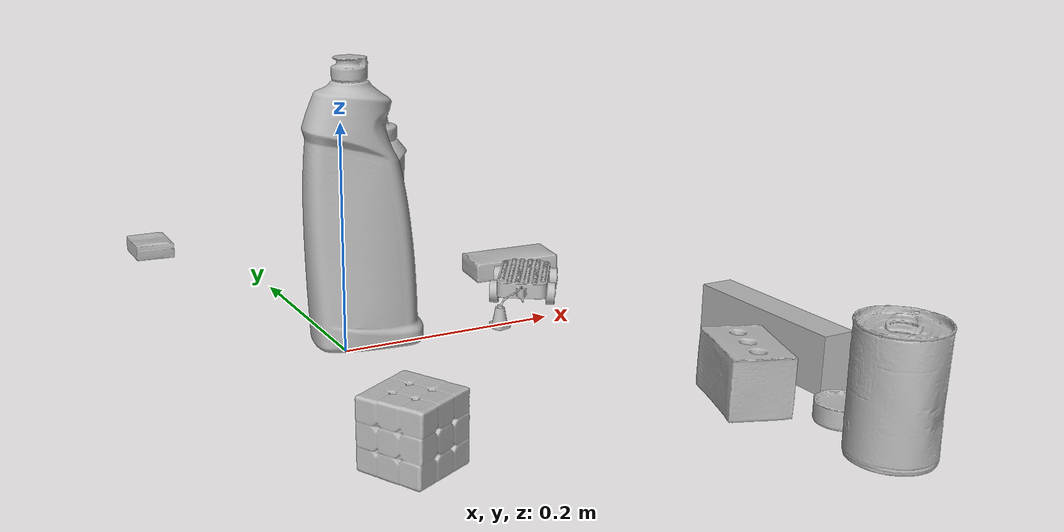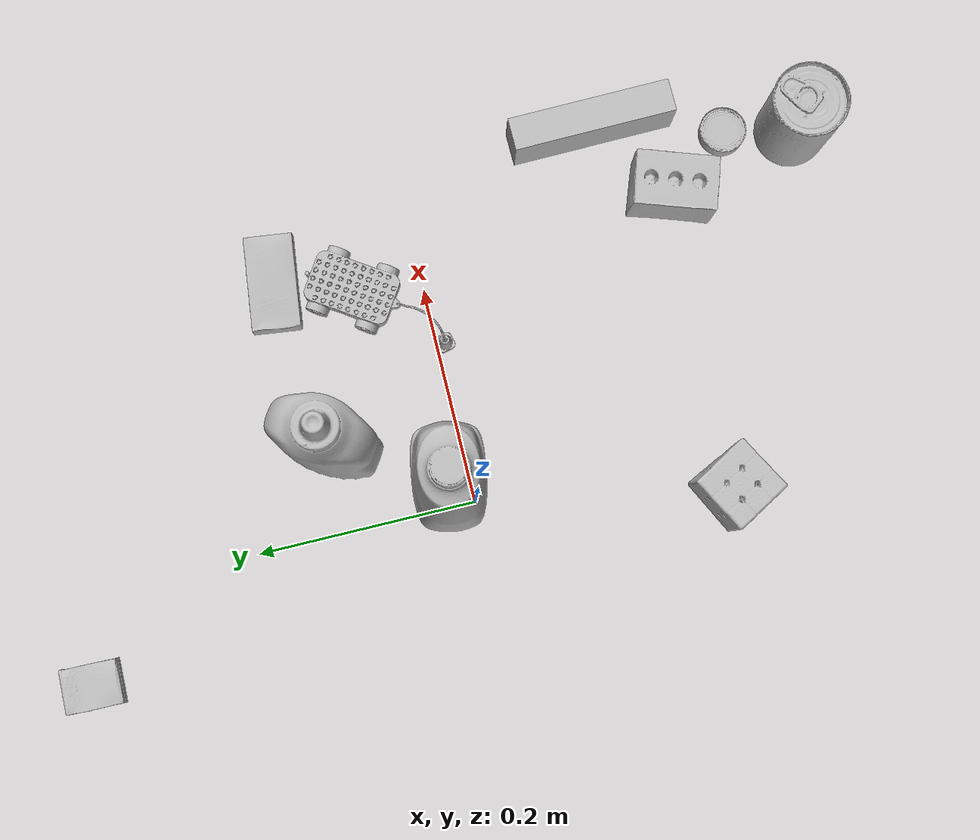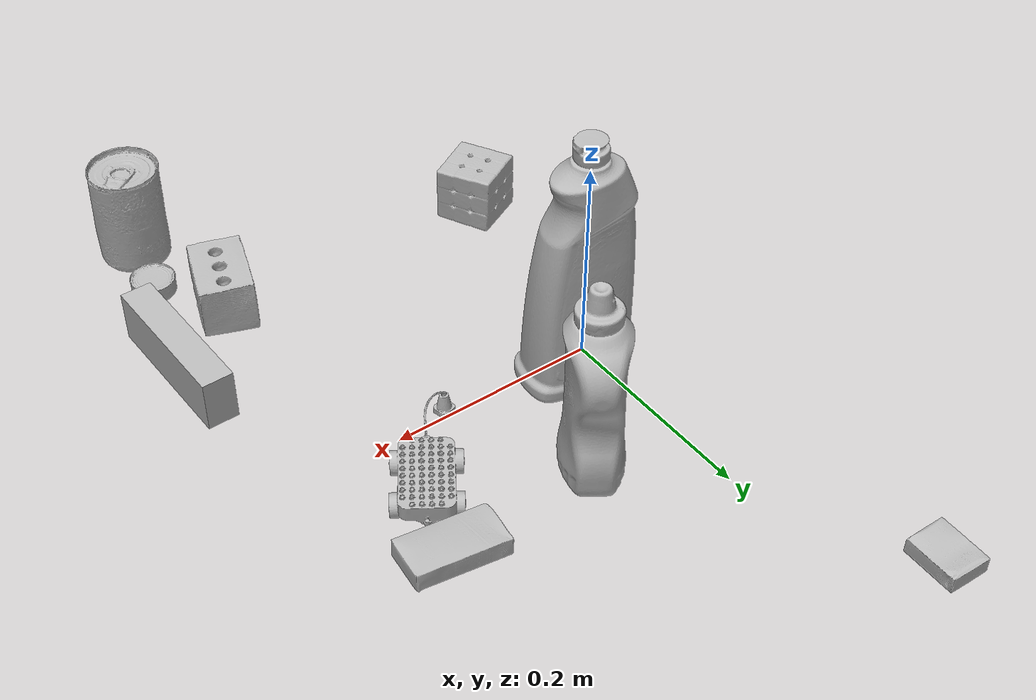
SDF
<sdf version="1.4">
  <world name="default">
    <light name="light1" type="point">
      <pose>0 0 1 0 0 0</pose>
      <diffuse>3 3 3 1</diffuse>
      <specular>3 3 3 1</specular>
    </light>
    <light name="light2" type="point">
      <pose>0 0.5 2 0 0 0</pose>
      <diffuse>1 1 1 1</diffuse>
      <specular>1 1 1 1</specular>
    </light>
    <light name="light3" type="point">
      <pose>0 0.5 2 0 0 0</pose>
      <diffuse>3 3 3 1</diffuse>
      <specular>3 3 3 1</specular>
    </light>
    <scene>
      <ambient>0.7 0.7 0.7</ambient>
    </scene>
    <model name="bottle1">
      <link name="link_bottle1">
        <collision name="default">
          <geometry>
            <mesh>
              <uri>model://bleach_cleanser/collision_meshes/collision.obj</uri>
              <scale>1.0 1.0 1.0</scale>
            </mesh>
          </geometry>
          <surface>
            <friction>
              <ode>
                <mu>0.5</mu>
                <mu2>0.5</mu2>
              </ode>
            </friction>
          <contact>
        <ode>
            <max_vel>0</max_vel>
            <min_depth>0.0001</min_depth>
            <kp>1e8</kp>
        </ode>
    </contact></surface>
        </collision>
        <visual name="default">
          <geometry>
            <mesh>
              <uri>model://bleach_cleanser/visual_meshes/visual.dae</uri>
              <scale>1.0 1.0 1.0</scale>
            </mesh>
          </geometry>
        </visual>
        <inertial>
          <mass>1.2697166204452515</mass>
          <pose>0.00012193183647468686 0.003783883061259985 -0.02442161738872528 -0.07381670616315505 0.00042011510954057825 -0.0068750724928957506</pose>
          <inertia>
            <ixx>0.0061798943</ixx>
            <iyy>0.0057587572</iyy>
            <izz>0.0010566014</izz>
            <ixy>0</ixy>
            <ixz>0</ixz>
            <iyz>0</iyz>
          </inertia>
        </inertial>
      </link>
      <pose>0.025739122182130814 0.01810500957071781 0.1258068084716797 -0.0002479430618360174 -0.0008381912645281163 1.4193372632994137</pose>
    </model>
    <model name="bottle2">
      <link name="link_bottle2">
        <collision name="default">
          <geometry>
            <mesh>
              <uri>model://mustard_bottle/collision_meshes/collision.obj</uri>
              <scale>1.0 1.0 1.0</scale>
            </mesh>
          </geometry>
          <surface>
            <friction>
              <ode>
                <mu>0.5</mu>
                <mu2>0.5</mu2>
              </ode>
            </friction>
          <contact>
        <ode>
            <max_vel>0</max_vel>
            <min_depth>0.0001</min_depth>
            <kp>1e8</kp>
        </ode>
    </contact></surface>
        </collision>
        <visual name="default">
          <geometry>
            <mesh>
              <uri>model://mustard_bottle/visual_meshes/visual.dae</uri>
              <scale>1.0 1.0 1.0</scale>
            </mesh>
          </geometry>
        </visual>
        <inertial>
          <mass>0.7653017640113831</mass>
          <pose>0.000503245391882956 -0.00015647402324248105 -0.01747579500079155 0.0004182327658992807 0.0009465785893850277 0.024853714910462506</pose>
          <inertia>
            <ixx>0.0021251384</ixx>
            <iyy>0.0018646289</iyy>
            <izz>0.0005600813</izz>
            <ixy>0</ixy>
            <ixz>0</ixz>
            <iyz>0</iyz>
          </inertia>
        </inertial>
      </link>
      <pose>0.08061975985765457 0.11567756533622742 0.09641683101654053 0.005728145196422217 -0.006741612955453787 -0.60165924646386</pose>
    </model>
    <model name="toy1">
      <link name="link_toy1">
        <collision name="default">
          <geometry>
            <mesh>
              <uri>model://g_lego_duplo/collision_meshes/collision.obj</uri>
              <scale>0.5 0.5 0.5</scale>
            </mesh>
          </geometry>
          <surface>
            <friction>
              <ode>
                <mu>0.5</mu>
                <mu2>0.5</mu2>
              </ode>
            </friction>
          <contact>
        <ode>
            <max_vel>0</max_vel>
            <min_depth>0.0001</min_depth>
            <kp>1e8</kp>
        </ode>
    </contact></surface>
        </collision>
        <visual name="default">
          <geometry>
            <mesh>
              <uri>model://g_lego_duplo/visual_meshes/visual.dae</uri>
              <scale>0.5 0.5 0.5</scale>
            </mesh>
          </geometry>
        </visual>
        <inertial>
          <mass>0.058442164212465286</mass>
          <pose>-0.025023842230439186 0.0008777315961197019 0.0019403378246352077 0.010962970283690966 0.0381082459421261 -0.09653034831594848</pose>
          <inertia>
            <ixx>2.1170836e-05</ixx>
            <iyy>6.4006235e-05</iyy>
            <izz>8.007422e-05</izz>
            <ixy>0</ixy>
            <ixz>0</ixz>
            <iyz>0</iyz>
          </inertia>
        </inertial>
      </link>
      <pose>0.19545404613018036 0.03954969346523285 0.014837533235549927 -0.00150829613328885 -0.005020010348264483 -2.161773317692422</pose>
    </model>
    <model name="toy2">
      <link name="link_toy2">
        <collision name="default">
          <geometry>
            <mesh>
              <uri>model://foam_brick/collision_meshes/collision.obj</uri>
              <scale>1.0 1.0 1.0</scale>
            </mesh>
          </geometry>
          <surface>
            <friction>
              <ode>
                <mu>0.5</mu>
                <mu2>0.5</mu2>
              </ode>
            </friction>
          <contact>
        <ode>
            <max_vel>0</max_vel>
            <min_depth>0.0001</min_depth>
            <kp>1e8</kp>
        </ode>
    </contact></surface>
        </collision>
        <visual name="default">
          <geometry>
            <mesh>
              <uri>model://foam_brick/visual_meshes/visual.dae</uri>
              <scale>1.0 1.0 1.0</scale>
            </mesh>
          </geometry>
        </visual>
        <inertial>
          <mass>0.20487983524799347</mass>
          <pose>-0.0002522472059354186 0.0003458437859080732 -0.0002532101352699101 -0.2940200921298176 0.01727444945267686 -0.0007449878655710941</pose>
          <inertia>
            <ixx>8.9495355e-05</ixx>
            <iyy>0.0001428839</iyy>
            <izz>0.00014469978</izz>
            <ixy>0</ixy>
            <ixz>0</ixz>
            <iyz>0</iyz>
          </inertia>
        </inertial>
      </link>
      <pose>0.23546212911605835 -0.2421875149011612 0.025922805070877075 0.013416846731058626 0.004152983243203146 1.2403529607237056</pose>
    </model>
    <model name="can1">
      <link name="link_can1">
        <collision name="default">
          <geometry>
            <mesh>
              <uri>model://tuna_fish_can/collision_meshes/collision.obj</uri>
              <scale>0.5 0.5 0.5</scale>
            </mesh>
          </geometry>
          <surface>
            <friction>
              <ode>
                <mu>0.5</mu>
                <mu2>0.5</mu2>
              </ode>
            </friction>
          <contact>
        <ode>
            <max_vel>0</max_vel>
            <min_depth>0.0001</min_depth>
            <kp>1e8</kp>
        </ode>
    </contact></surface>
        </collision>
        <visual name="default">
          <geometry>
            <mesh>
              <uri>model://tuna_fish_can/visual_meshes/visual.dae</uri>
              <scale>0.5 0.5 0.5</scale>
            </mesh>
          </geometry>
        </visual>
        <inertial>
          <mass>0.012491201050579548</mass>
          <pose>-2.036202567978762e-05 -7.256427124957554e-06 -0.0005269025568850338 -0.0017944782936896576 0.0001716245920406042 0.24054207470378652</pose>
          <inertia>
            <ixx>1.6888293e-06</ixx>
            <iyy>1.6817903e-06</iyy>
            <izz>2.889828e-06</izz>
            <ixy>0</ixy>
            <ixz>0</ixz>
            <iyz>0</iyz>
          </inertia>
        </inertial>
      </link>
      <pose>0.27833789587020874 -0.30289751291275024 0.00851999968290329 2.1511202492471556e-09 2.5404563484107465e-08 -2.2124816719263847</pose>
    </model>
    <model name="can2">
      <link name="link_can2">
        <collision name="default">
          <geometry>
            <mesh>
              <uri>model://tomato_soup_can/collision_meshes/collision.obj</uri>
              <scale>1.0 1.0 1.0</scale>
            </mesh>
          </geometry>
          <surface>
            <friction>
              <ode>
                <mu>0.5</mu>
                <mu2>0.5</mu2>
              </ode>
            </friction>
          <contact>
        <ode>
            <max_vel>0</max_vel>
            <min_depth>0.0001</min_depth>
            <kp>1e8</kp>
        </ode>
    </contact></surface>
        </collision>
        <visual name="default">
          <geometry>
            <mesh>
              <uri>model://tomato_soup_can/visual_meshes/visual.dae</uri>
              <scale>1.0 1.0 1.0</scale>
            </mesh>
          </geometry>
        </visual>
        <inertial>
          <mass>0.1827235370874405</mass>
          <pose>0.00012652271834667772 0.00010805515921674669 -0.0017973986687138677 0.007020070640758328 0.00042299385100205743 -0.009903366123441316</pose>
          <inertia>
            <ixx>0.00020034082</ixx>
            <iyy>0.00019918295</iyy>
            <izz>0.00010383482</izz>
            <ixy>0</ixy>
            <ixz>0</ixz>
            <iyz>0</iyz>
          </inertia>
        </inertial>
      </link>
      <pose>0.26553410291671753 -0.3648475706577301 0.051274023950099945 -4.385755767534109e-07 -5.57582263813101e-07 1.9764087414657812</pose>
    </model>
    <model name="box1">
      <link name="link_box1">
        <collision name="default">
          <geometry>
            <mesh>
              <uri>model://jenga/collision_meshes/collision.obj</uri>
              <scale>1.0 1.0 1.0</scale>
            </mesh>
          </geometry>
          <surface>
            <friction>
              <ode>
                <mu>0.5</mu>
                <mu2>0.5</mu2>
              </ode>
            </friction>
          <contact>
        <ode>
            <max_vel>0</max_vel>
            <min_depth>0.0001</min_depth>
            <kp>1e8</kp>
        </ode>
    </contact></surface>
        </collision>
        <visual name="default">
          <geometry>
            <mesh>
              <uri>model://jenga/visual_meshes/visual.dae</uri>
              <scale>1.0 1.0 1.0</scale>
            </mesh>
          </geometry>
        </visual>
        <inertial>
          <mass>0.23032541573047638</mass>
          <pose>-2.502855807051674e-07 -0.00010250010382151231 -4.0923401684267446e-05 0.0 -7.342154049184251e-07 0.0</pose>
          <inertia>
            <ixx>6.3736625e-05</ixx>
            <iyy>0.00043187768</iyy>
            <izz>0.00046106614</izz>
            <ixy>0</ixy>
            <ixz>0</ixz>
            <iyz>0</iyz>
          </inertia>
        </inertial>
      </link>
      <pose>0.3117029368877411 -0.18402843177318573 0.02449694275856018 -1.5774980785644792 2.9223848324221323e-07 -1.5564165424143208</pose>
    </model>
    <model name="box2">
      <link name="link_box2">
        <collision name="default">
          <geometry>
            <mesh>
              <uri>model://cracker_box/collision_meshes/collision.obj</uri>
              <scale>0.25 0.25 0.25</scale>
            </mesh>
          </geometry>
          <surface>
            <friction>
              <ode>
                <mu>0.5</mu>
                <mu2>0.5</mu2>
              </ode>
            </friction>
          <contact>
        <ode>
            <max_vel>0</max_vel>
            <min_depth>0.0001</min_depth>
            <kp>1e8</kp>
        </ode>
    </contact></surface>
        </collision>
        <visual name="default">
          <geometry>
            <mesh>
              <uri>model://cracker_box/visual_meshes/visual.dae</uri>
              <scale>0.25 0.25 0.25</scale>
            </mesh>
          </geometry>
        </visual>
        <inertial>
          <mass>0.037928901612758636</mass>
          <pose>0.0002366034168517217 6.358561222441494e-05 -0.000425738311605528 -0.00031620771242973385 -0.011106489600347247 0.002546794536796529</pose>
          <inertia>
            <ixx>6.029637e-06</ixx>
            <iyy>9.956116e-06</iyy>
            <izz>1.420829e-05</izz>
            <ixy>0</ixy>
            <ixz>0</ixz>
            <iyz>0</iyz>
          </inertia>
        </inertial>
      </link>
      <pose>-0.07887338846921921 0.36798202991485596 0.009120449423789978 -0.011788058148958315 -0.007367027057229946 -1.5961296077142593</pose>
    </model>
    <model name="box3">
      <link name="link_box3">
        <collision name="default">
          <geometry>
            <mesh>
              <uri>model://sugar_box/collision_meshes/collision.obj</uri>
              <scale>0.5 0.5 0.5</scale>
            </mesh>
          </geometry>
          <surface>
            <friction>
              <ode>
                <mu>0.5</mu>
                <mu2>0.5</mu2>
              </ode>
            </friction>
          <contact>
        <ode>
            <max_vel>0</max_vel>
            <min_depth>0.0001</min_depth>
            <kp>1e8</kp>
        </ode>
    </contact></surface>
        </collision>
        <visual name="default">
          <geometry>
            <mesh>
              <uri>model://sugar_box/visual_meshes/visual.dae</uri>
              <scale>0.5 0.5 0.5</scale>
            </mesh>
          </geometry>
        </visual>
        <inertial>
          <mass>0.11577744781970978</mass>
          <pose>0.0005171863595023751 1.9245549992774613e-05 -0.00018182402709499002 -0.0004046260967602003 0.0010506636382171825 0.002615378323343388</pose>
          <inertia>
            <ixx>2.4116362e-05</ixx>
            <iyy>7.7949044e-05</iyy>
            <izz>9.3314295e-05</izz>
            <ixy>0</ixy>
            <ixz>0</ixz>
            <iyz>0</iyz>
          </inertia>
        </inertial>
      </link>
      <pose>0.236216738820076 0.13295280933380127 0.011399300768971443 0.0007747107019299721 -0.02343302671458817 -0.12833490928200794</pose>
    </model>
    <model name="box4">
      <link name="link_box4">
        <collision name="default">
          <geometry>
            <mesh>
              <uri>model://rubiks_cube/collision_meshes/collision.obj</uri>
              <scale>1.0 1.0 1.0</scale>
            </mesh>
          </geometry>
          <surface>
            <friction>
              <ode>
                <mu>0.5</mu>
                <mu2>0.5</mu2>
              </ode>
            </friction>
          <contact>
        <ode>
            <max_vel>0</max_vel>
            <min_depth>0.0001</min_depth>
            <kp>1e8</kp>
        </ode>
    </contact></surface>
        </collision>
        <visual name="default">
          <geometry>
            <mesh>
              <uri>model://rubiks_cube/visual_meshes/visual.dae</uri>
              <scale>1.0 1.0 1.0</scale>
            </mesh>
          </geometry>
        </visual>
        <inertial>
          <mass>0.277982622385025</mass>
          <pose>2.6721041649580002e-05 5.2569666877388954e-05 -7.264316082000732e-06 -0.05467259342135701 -0.09814005995908277 -0.03445491653702878</pose>
          <inertia>
            <ixx>0.00015360407</ixx>
            <iyy>0.00015288773</iyy>
            <izz>0.00015487692</izz>
            <ixy>0</ixy>
            <ixz>0</ixz>
            <iyz>0</iyz>
          </inertia>
        </inertial>
      </link>
      <pose>-0.042419638484716415 -0.22822141647338867 0.028678949922323227 -4.18032818363547e-06 -1.753792711168269e-06 -1.0744165567488202</pose>
    </model>
  <physics type="ode">
      <max_contacts>50</max_contacts>
      <ode>
        <solver>
          <type>quick</type>
          <iters>75</iters>
        </solver>
        <constraints>
          <contact_max_correcting_vel>0</contact_max_correcting_vel>
          <contact_surface_layer>0</contact_surface_layer>
        </constraints>
      </ode>
    </physics></world>
</sdf>
